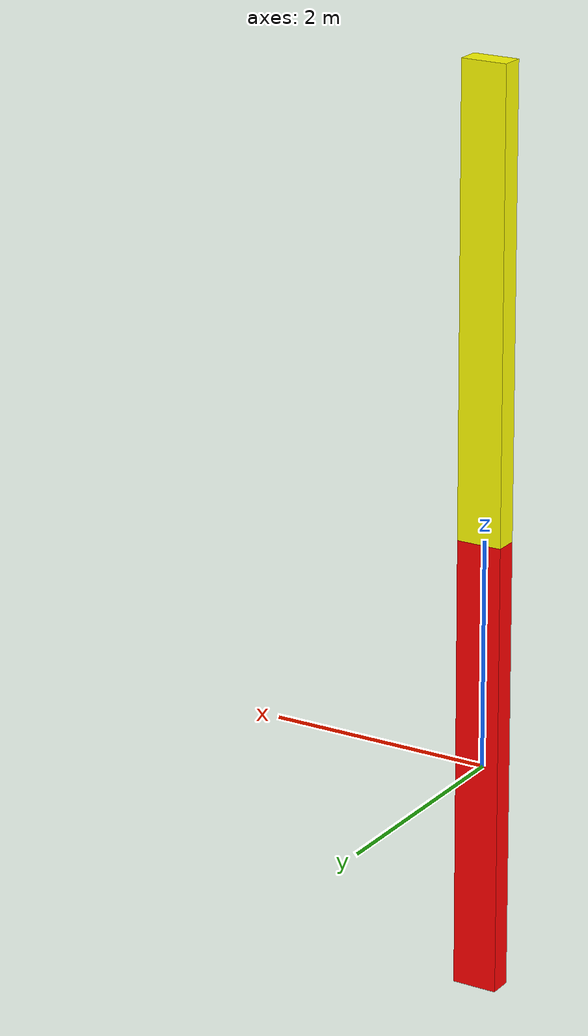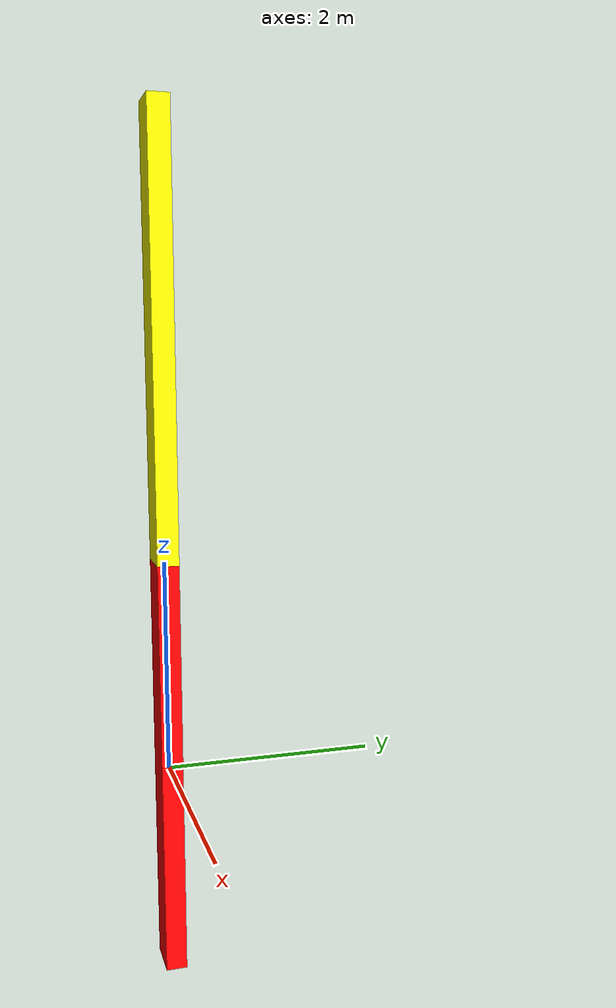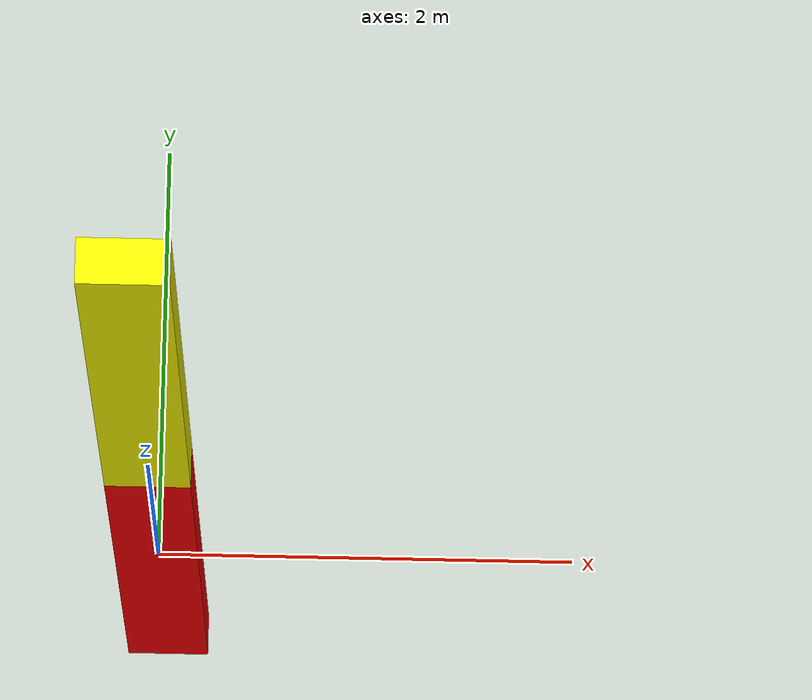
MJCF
<mujoco>
  <option timestep=".001">
  </option>
  <asset>
    <texture name="grid" type="2d" builtin="checker" rgb1=".1 .2 .3" rgb2=".2 .3 .4" width="640" height="480"/>
    <material name="grid" texture="grid" texrepeat="8 8" reflectance=".2"/>
  </asset>
  <worldbody>
    <body name="oleg" pos="0 0 0">
      <body name="thigh" pos="0 0 0">
        <joint type="slide" axis="1 0 0" pos="0 0 0" limited="true" range="-10 10"/>
        <joint type="slide" axis="0 0 1" pos="0 0 0" limited="true" range="-10 0"/>
        <joint name="thigh_joint" type="hinge" axis="0 -1 0" pos="0 0 6" limited="true" range="-60 60"/>
        <joint type="hinge" axis="-1 0 0" pos="0 0 6" limited="true" range="-5 5"/>
        <geom pos="0 0 4" type="box" size="0.2 0.1 2.0" rgba="1 1 0 1" mass="0.5"/>
        <body name="calf" pos="0 0 0">
          <joint name="knee_joint" axis="0 -1 0" pos="0 0 2"/>
          <geom pos="0 0 0" type="box" size="0.2 0.1 2.0" rgba="1 0 0 1" mass="0.3"/>
        </body>
      </body>
    </body>
  </worldbody>
  <actuator>
    <motor name='thigh_motor' ctrllimited="true" ctrlrange="-100.0 100.0" joint="thigh_joint"/>
    <motor name='knee_motor' ctrllimited="true" ctrlrange="-100.0 100.0" joint="knee_joint"/>
  </actuator>
</mujoco>
